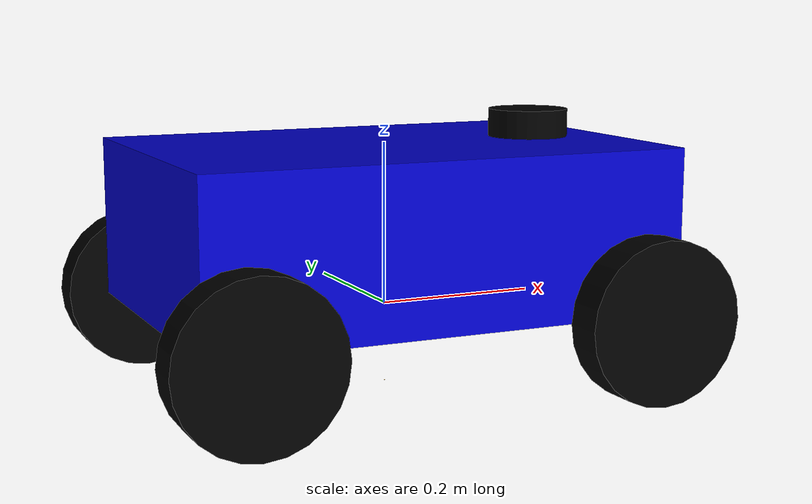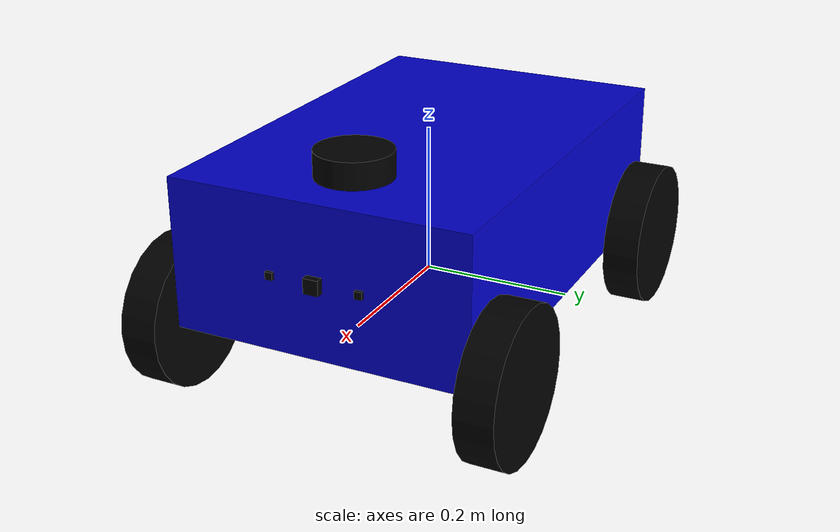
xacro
<?xml version="1.0"?>
<robot xmlns:xacro="http://www.ros.org/wiki/xacro" name="four_wheel_robot">

    <!-- 包含文件 -->
    <xacro:include filename="$(find four_wheel_robot_description)/urdf/robot_core.xacro"/>
    <xacro:include filename="$(find four_wheel_robot_description)/urdf/sensors.xacro"/>

    <!-- 添加3D激光雷达 -->
    <xacro:lidar_3d_sensor
        name="laser_link"
        parent="base_link"
        xyz="0.2 0 ${chassis_height}"
        rpy="0 0 0"/>

    <!-- 添加摄像头 -->
    <xacro:stereo_camera_sensor name="stereo_camera"
                               parent="base_link"
                               xyz="${chassis_length/2} 0 ${chassis_height/2}"
                               rpy="0 0 0"
                               baseline="0.12"/>

    <!-- 添加IMU -->
    <xacro:imu_sensor name="imu" parent="base_link" xyz="0 0 ${chassis_height/2}" rpy="0 0 0"/>

</robot>

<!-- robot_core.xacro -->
<robot xmlns:xacro="http://www.ros.org/wiki/xacro">

    <!-- 机器人参数 -->
    <xacro:property name="chassis_length" value="0.6"/>
    <xacro:property name="chassis_width" value="0.4"/>
    <xacro:property name="chassis_height" value="0.2"/>
    <xacro:property name="wheel_radius" value="0.1"/>
    <xacro:property name="wheel_width" value="0.05"/>
    <xacro:property name="wheel_pos_x" value="0.25"/>  <!-- 前后轮距离车体中心的距离 -->

    <!-- 材质定义 -->
    <material name="blue">
        <color rgba="0 0 0.8 1"/>
    </material>
    <material name="black">
        <color rgba="0 0 0 1"/>
    </material>

    <!-- Base Footprint -->
    <link name="base_footprint">
        <inertial>
            <mass value="0.0001"/>
            <origin xyz="0 0 0" rpy="0 0 0"/>
            <inertia
                ixx="0.0001" ixy="0.0" ixz="0.0"
                iyy="0.0001" iyz="0.0"
                izz="0.0001"/>
        </inertial>
        <visual>
            <origin xyz="0 0 0" rpy="0 0 0"/>
            <geometry>
                <box size="0.001 0.001 0.001"/>
            </geometry>
        </visual>
        <collision>
            <origin xyz="0 0 0" rpy="0 0 0"/>
            <geometry>
                <box size="0.001 0.001 0.001"/>
            </geometry>
        </collision>
    </link>

    <!-- base_link 到 base_footprint 的固定关节 -->
    <joint name="base_link_to_footprint" type="fixed">
        <parent link="base_link"/>
        <child link="base_footprint"/>
        <origin xyz="0 0 -${wheel_radius}" rpy="0 0 0"/>
    </joint>

    <!-- 底盘 Base Link -->
    <link name="base_link">
        <visual>
            <geometry>
                <box size="${chassis_length} ${chassis_width} ${chassis_height}"/>
            </geometry>
            <material name="blue"/>
            <origin xyz="0 0 ${chassis_height/2}" rpy="0 0 0"/>
        </visual>
        <collision>
            <geometry>
                <box size="${chassis_length} ${chassis_width} ${chassis_height}"/>
            </geometry>
            <origin xyz="0 0 ${chassis_height/2}" rpy="0 0 0"/>
        </collision>
        <inertial>
            <mass value="5.0"/>
            <origin xyz="0 0 ${chassis_height/2}" rpy="0 0 0"/>
            <inertia
                ixx="${(1/12) * 5.0 * (chassis_width*chassis_width + chassis_height*chassis_height)}"
                ixy="0"
                ixz="0"
                iyy="${(1/12) * 5.0 * (chassis_length*chassis_length + chassis_height*chassis_height)}"
                iyz="0"
                izz="${(1/12) * 5.0 * (chassis_length*chassis_length + chassis_width*chassis_width)}"/>
        </inertial>
    </link>

    <!-- 车轮宏定义 -->
    <xacro:macro name="wheel" params="prefix x_offset y_offset">
        <!-- 轮子link -->
        <link name="${prefix}_wheel">
            <visual>
                <geometry>
                    <cylinder radius="${wheel_radius}" length="${wheel_width}"/>
                </geometry>
                <material name="black"/>
                <origin xyz="0 0 0" rpy="${pi/2} 0 0"/>
            </visual>
            <collision>
                <geometry>
                    <cylinder radius="${wheel_radius}" length="${wheel_width}"/>
                </geometry>
                <origin xyz="0 0 0" rpy="${pi/2} 0 0"/>
            </collision>
            <inertial>
                <mass value="0.5"/>
                <origin xyz="0 0 0" rpy="${pi/2} 0 0"/>
                <inertia
                    ixx="${(1/12) * 0.5 * (3*wheel_radius*wheel_radius + wheel_width*wheel_width)}"
                    ixy="0"
                    ixz="0"
                    iyy="${(1/12) * 0.5 * (3*wheel_radius*wheel_radius + wheel_width*wheel_width)}"
                    iyz="0"
                    izz="${(1/2) * 0.5 * (wheel_radius*wheel_radius)}"/>
            </inertial>
        </link>

        <joint name="${prefix}_wheel_joint" type="continuous">
            <parent link="base_link"/>
            <child link="${prefix}_wheel"/>
            <origin xyz="${x_offset} ${y_offset} 0" rpy="0 0 0"/>
            <axis xyz="0 1 0"/>
        </joint>

        <!-- Gazebo specific wheel properties -->
        <gazebo reference="${prefix}_wheel">
            <material>Gazebo/Black</material>
            <mu1>0.8</mu1>
            <mu2>0.8</mu2>
            <kp>500000.0</kp>
            <kd>50.0</kd>
            <minDepth>0.001</minDepth>
            <maxVel>1.5</maxVel>
            <fdir1>1 0 0</fdir1>
        </gazebo>

        <!-- 添加传动装置 -->
        <transmission name="${prefix}_wheel_trans">
            <type>transmission_interface/SimpleTransmission</type>
            <joint name="${prefix}_wheel_joint">
                <hardwareInterface>hardware_interface/VelocityJointInterface</hardwareInterface>
            </joint>
            <actuator name="${prefix}_wheel_motor">
                <mechanicalReduction>1</mechanicalReduction>
            </actuator>
        </transmission>
    </xacro:macro>

    <!-- 使用wheel_pos_x参数统一轮子位置 -->
    <xacro:wheel prefix="front_left" x_offset="${wheel_pos_x}" y_offset="${chassis_width/2 + wheel_width/2}"/>
    <xacro:wheel prefix="front_right" x_offset="${wheel_pos_x}" y_offset="-${chassis_width/2 + wheel_width/2}"/>
    <xacro:wheel prefix="rear_left" x_offset="-${wheel_pos_x}" y_offset="${chassis_width/2 + wheel_width/2}"/>
    <xacro:wheel prefix="rear_right" x_offset="-${wheel_pos_x}" y_offset="-${chassis_width/2 + wheel_width/2}"/>

    <gazebo reference="base_link">
        <material>Gazebo/Blue</material>
        <mu1>0.2</mu1>
        <mu2>0.2</mu2>
        <kp>1000000.0</kp>
        <kd>100.0</kd>
    </gazebo>

    <!-- 差速驱动插件配置 -->
    <gazebo>
        <plugin name="diff_drive" filename="libgazebo_ros_diff_drive.so">
            <!-- 基本配置 -->
            <ros>
                <namespace>/</namespace>
                <remapping>cmd_vel:=cmd_vel</remapping>
                <remapping>odom:=odom</remapping>
            </ros>

            <!-- 轮子配置 -->
            <left_joint>front_left_wheel_joint</left_joint>
            <right_joint>front_right_wheel_joint</right_joint>
            <wheel_separation>0.4</wheel_separation>
            <wheel_diameter>0.2</wheel_diameter>

            <!-- 发布TF和里程计 -->
            <publish_odom>true</publish_odom>
            <publish_odom_tf>true</publish_odom_tf>
            <publish_wheel_tf>true</publish_wheel_tf>

            <odometry_frame>odom</odometry_frame>
            <robot_base_frame>base_link</robot_base_frame>
        </plugin>
    </gazebo>

</robot>

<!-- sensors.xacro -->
<robot xmlns:xacro="http://www.ros.org/wiki/xacro">
    <!-- 3D LiDAR宏定义 -->
    <xacro:macro name="lidar_3d_sensor" params="name parent xyz rpy">
        <!-- 激光雷达关节 -->
        <joint name="${name}_joint" type="fixed">
            <parent link="${parent}"/>
            <child link="${name}"/>
            <origin xyz="${xyz}" rpy="${rpy}"/>
        </joint>

        <!-- 激光雷达连杆 -->
        <link name="${name}">
            <visual>
                <geometry>
                    <cylinder radius="0.05" length="0.07"/>
                </geometry>
                <material name="black"/>
            </visual>
            <collision>
                <geometry>
                    <cylinder radius="0.05" length="0.07"/>
                </geometry>
            </collision>
            <inertial>
                <mass value="0.1"/>
                <origin xyz="0 0 0" rpy="0 0 0"/>
                <inertia
                    ixx="0.001"
                    ixy="0"
                    ixz="0"
                    iyy="0.001"
                    iyz="0"
                    izz="0.001"/>
            </inertial>
        </link>

        <gazebo reference="${name}">
            <sensor type="ray" name="${name}">
                <always_on>true</always_on>
                <visualize>true</visualize>
                <update_rate>10</update_rate>
                <ray>
                    <scan>
                        <horizontal>
                            <samples>360</samples>
                            <resolution>1</resolution>
                            <min_angle>-3.14159</min_angle>
                            <max_angle>3.14159</max_angle>
                        </horizontal>
                        <vertical>
                            <samples>16</samples>
                            <resolution>1</resolution>
                            <min_angle>-0.261799</min_angle>
                            <max_angle>0.261799</max_angle>
                        </vertical>
                    </scan>
                    <range>
                        <min>0.3</min>
                        <max>30.0</max>
                        <resolution>0.01</resolution>
                    </range>
                </ray>
                <plugin name="${name}_controller" filename="libgazebo_ros_ray_sensor.so">
                    <ros>
                        <namespace>/four_wheel_robot</namespace>
                        <remapping>~/out:=scan</remapping>
                    </ros>
                    <output_type>sensor_msgs/PointCloud2</output_type>
                    <frame_name>${name}</frame_name>
                </plugin>
            </sensor>
        </gazebo>
    </xacro:macro>

    <!-- Stereo Camera 宏定义 -->
    <xacro:macro name="stereo_camera_sensor" params="name parent xyz rpy baseline">
        <!-- 相机基座链接 -->
        <joint name="${name}_joint" type="fixed">
            <parent link="${parent}"/>
            <child link="${name}_link"/>
            <origin xyz="${xyz}" rpy="${rpy}"/>
        </joint>

        <link name="${name}_link">
            <visual>
                <geometry>
                    <box size="0.02 0.02 0.02"/>
                </geometry>
                <material name="black"/>
            </visual>
            <collision>
                <geometry>
                    <box size="0.02 0.02 0.02"/>
                </geometry>
            </collision>
            <inertial>
                <mass value="0.1"/>
                <inertia ixx="0.001" ixy="0" ixz="0" iyy="0.001" iyz="0" izz="0.001"/>
            </inertial>
        </link>

        <!-- 左相机 -->
        <joint name="${name}_left_joint" type="fixed">
            <parent link="${name}_link"/>
            <child link="${name}_left"/>
            <origin xyz="0 ${baseline/2} 0" rpy="0 0 0"/>
        </joint>

        <link name="${name}_left">
            <visual>
                <geometry>
                    <box size="0.01 0.01 0.01"/>
                </geometry>
                <material name="black"/>
            </visual>
        </link>

        <!-- 右相机 -->
        <joint name="${name}_right_joint" type="fixed">
            <parent link="${name}_link"/>
            <child link="${name}_right"/>
            <origin xyz="0 -${baseline/2} 0" rpy="0 0 0"/>
        </joint>

        <link name="${name}_right">
            <visual>
                <geometry>
                    <box size="0.01 0.01 0.01"/>
                </geometry>
                <material name="black"/>
            </visual>
        </link>

        <!-- Gazebo插件配置 -->
        <gazebo reference="${name}_left">
            <sensor type="camera" name="${name}_left">
                <update_rate>30.0</update_rate>
                <camera>
                    <horizontal_fov>1.3962634</horizontal_fov>
                    <image>
                        <width>800</width>
                        <height>600</height>
                        <format>R8G8B8</format>
                    </image>
                    <clip>
                        <near>0.1</near>
                        <far>100.0</far>
                    </clip>
                </camera>
                <plugin name="${name}_left_controller" filename="libgazebo_ros_camera.so">
                    <ros>
                        <namespace>/four_wheel_robot</namespace>
                        <remapping>image_raw:=${name}_left/image_raw</remapping>
                    </ros>
                    <frame_name>${name}_left</frame_name>
                </plugin>
            </sensor>
        </gazebo>

        <gazebo reference="${name}_right">
            <sensor type="camera" name="${name}_right">
                <update_rate>30.0</update_rate>
                <camera>
                    <horizontal_fov>1.3962634</horizontal_fov>
                    <image>
                        <width>800</width>
                        <height>600</height>
                        <format>R8G8B8</format>
                    </image>
                    <clip>
                        <near>0.1</near>
                        <far>100.0</far>
                    </clip>
                </camera>
                <plugin name="${name}_right_controller" filename="libgazebo_ros_camera.so">
                    <ros>
                        <namespace>/four_wheel_robot</namespace>
                        <remapping>image_raw:=${name}_right/image_raw</remapping>
                    </ros>
                    <frame_name>${name}_right</frame_name>
                </plugin>
            </sensor>
        </gazebo>
    </xacro:macro>

    <!-- IMU 宏定义 -->
    <xacro:macro name="imu_sensor" params="name parent xyz rpy">
        <joint name="${name}_joint" type="fixed">
            <parent link="${parent}"/>
            <child link="${name}"/>
            <origin xyz="${xyz}" rpy="${rpy}"/>
        </joint>

        <link name="${name}">
            <inertial>
                <mass value="0.001"/>
                <origin xyz="0 0 0" rpy="0 0 0"/>
                <inertia ixx="0.0001" ixy="0" ixz="0" iyy="0.0001" iyz="0" izz="0.0001"/>
            </inertial>
        </link>

        <gazebo reference="${name}">
            <sensor name="${name}_sensor" type="imu">
                <always_on>true</always_on>
                <update_rate>100</update_rate>
                <visualize>true</visualize>
                <plugin name="imu_plugin" filename="libgazebo_ros_imu_sensor.so">
                    <ros>
                        <namespace>/</namespace>
                        <remapping>~/out:=imu</remapping>
                    </ros>
                    <initial_orientation_as_reference>false</initial_orientation_as_reference>
                    <frame_name>${name}</frame_name>
                    <xyzOffset>0 0 0</xyzOffset>
                    <rpyOffset>0 0 0</rpyOffset>
                    <gaussianNoise>0.00001</gaussianNoise>
                </plugin>
            </sensor>
        </gazebo>
    </xacro:macro>
</robot>
